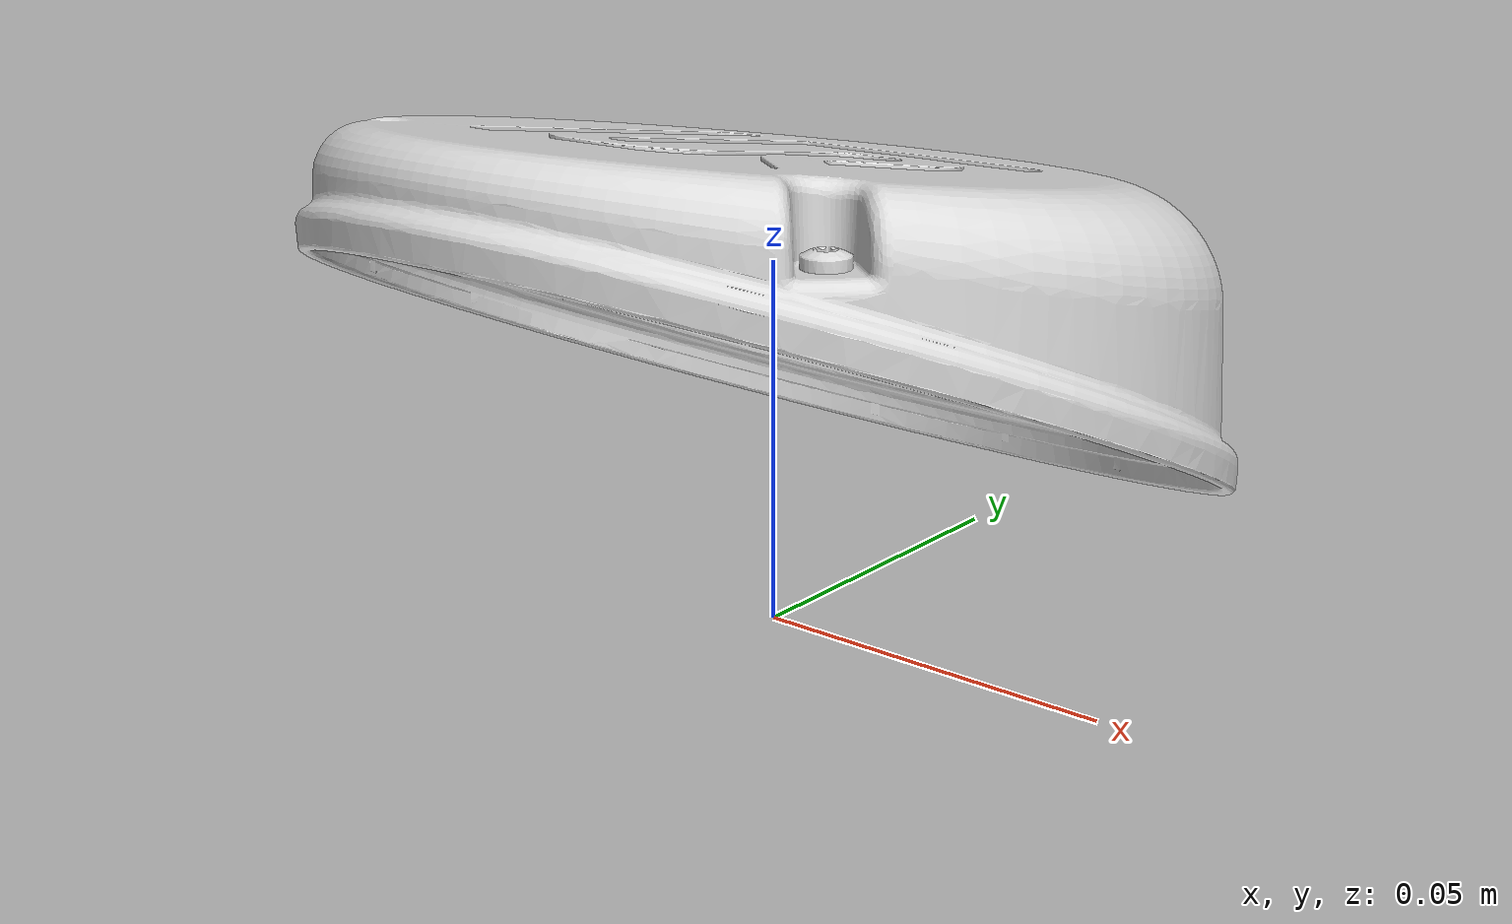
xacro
<?xml version="1.0"?>
<!-- |    This document was autogenerated by xacro from
install/share/gazebo_env/urdf/rrbot.urdf.xacro | -->
<!-- |    EDITING THIS FILE BY HAND IS NOT RECOMMENDED                                 | -->
<!-- Revolute-Revolute Manipulator -->
<!--
Copied and modified from ROS1 example -
https://github.com/ros-simulation/gazebo_ros_demos/blob/kinetic-devel/rrbot_description/urdf/rrbot.xacro
-->
<robot name="2dof_robot" xmlns:xacro="http://ros.org/wiki/xacro">
    <link name="world" />
    <joint name="base_joint" type="fixed">
        <origin rpy="0 0 0" xyz="0 0 0" />
        <parent link="world" />
        <child link="base_link" />
    </joint>

    <link name="base_link">
        <visual>
            <origin rpy="0 0 3.141592653589793" xyz="0 0 0" />
            <geometry>
                <mesh
                    filename="file://$(find gazebo_env)/meshes/ur5_obj/ImageToStl.com_shoulder_0.dae" />
            </geometry>
        </visual>
        <inertial>
            <mass value="4.0" />
            <origin rpy="0 0 0" xyz="0 0 0" />
            <inertia ixx="0.00443333156" ixy="0.0" ixz="0.0" iyy="0.00443333156" iyz="0.0"
                izz="0.0072" />
        </inertial>
    </link>
    <gazebo>
        <plugin name="no_physics" filename="libno_physics_plugin.so" />
    </gazebo>
</robot>
